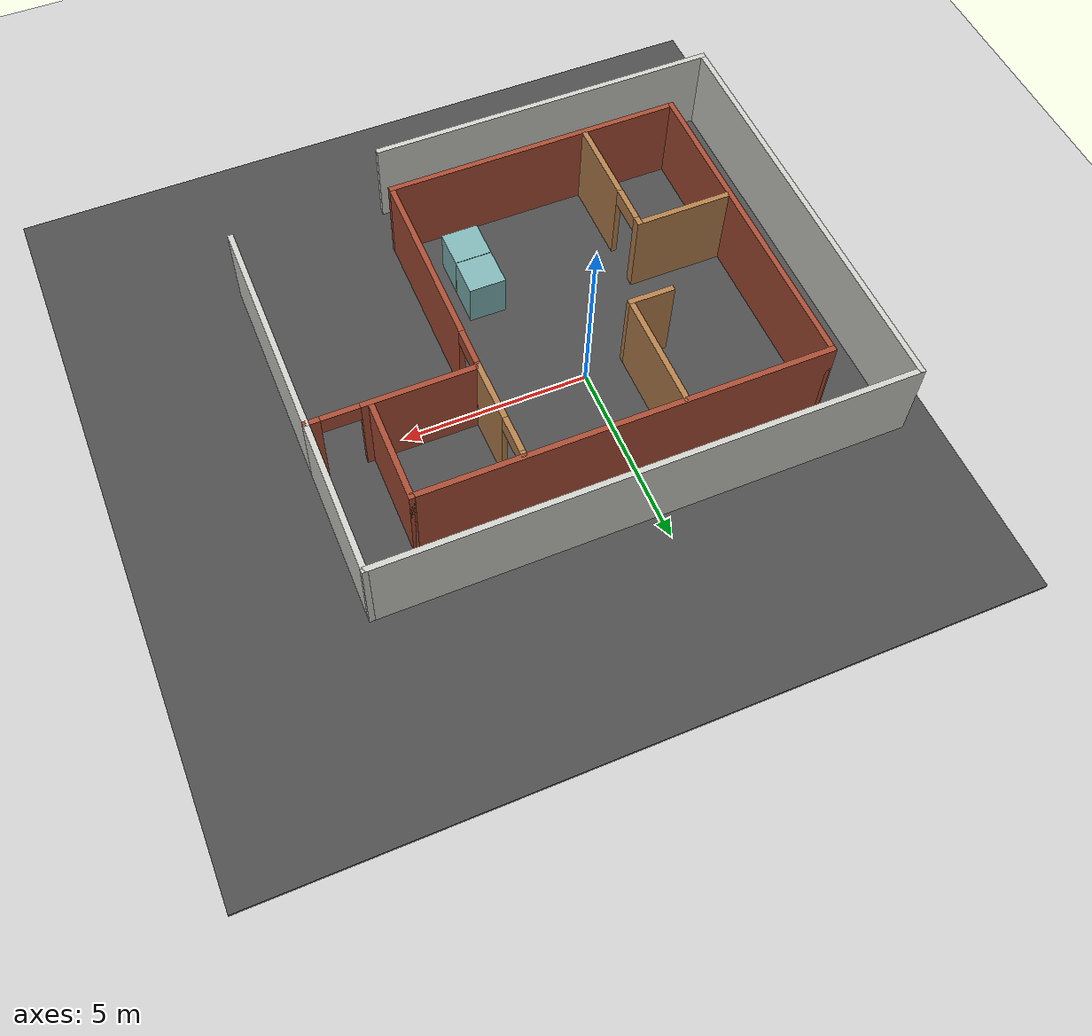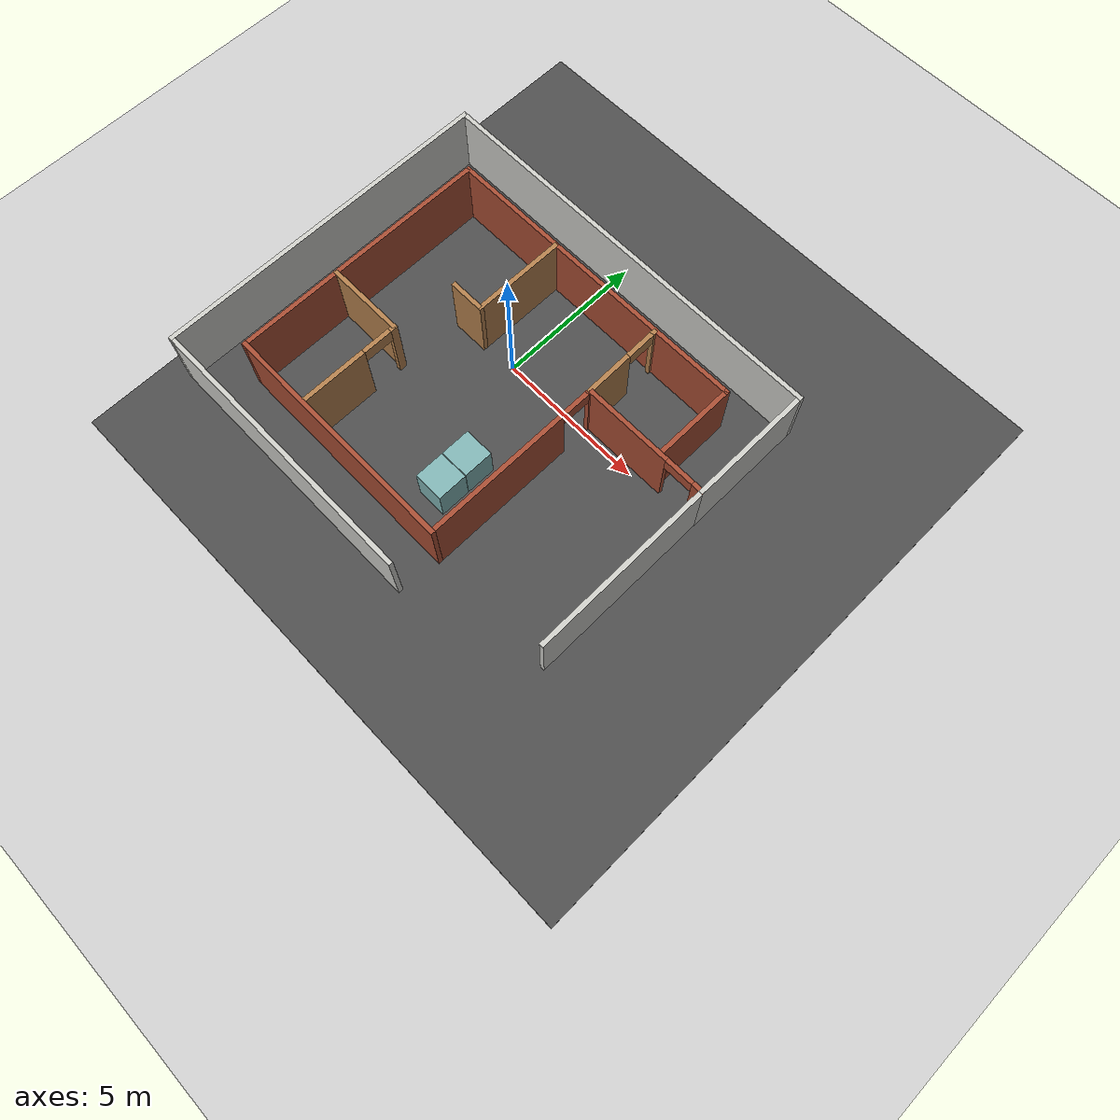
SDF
<sdf version="1.6">
 <world name="default">
  <model name="ground_plane">
   <static>1</static>
   <link name="link">
    <collision name="collision">
     <geometry><plane><normal>0 0 1</normal><size>100 100</size></plane></geometry>
     <surface><friction><ode><mu>100</mu><mu2>50</mu2></ode></friction></surface>
    </collision>
    <visual name="visual">
     <cast_shadows>0</cast_shadows>
     <geometry><plane><normal>0 0 1</normal><size>100 100</size></plane></geometry>
     <material>
      <script><uri>file://media/materials/scripts/gazebo.material</uri><name>Gazebo/Grey</name></script>
     </material>
    </visual>
   </link>
  </model>
  <model name="adaptada">
   <pose>0.353593 -1.4494 0 0 -0 0</pose>
   <link name="Wall_0">
    <collision name="Wall_0_Collision">
     <geometry><box><size>6.25 0.15 2.5</size></box></geometry>
     <pose>0 0 1.25 0 -0 0</pose>
    </collision>
    <visual name="Wall_0_Visual">
     <pose>0 0 1.25 0 -0 0</pose>
     <geometry><box><size>6.25 0.15 2.5</size></box></geometry>
     <material>
      <script><uri>file://media/materials/scripts/gazebo.material</uri><name>Gazebo/CeilingTiled</name></script>
      <ambient>1 1 1 1</ambient>
     </material>
     <meta><layer>0</layer></meta>
    </visual>
    <pose>7.05 -1.35 0 0 -0 1.5708</pose>
   </link>
   <link name="Wall_1">
    <pose>4.875 1.7 0 0 -0 3.14159</pose>
    <visual name="Wall_1_Visual_0">
     <pose>-2.04113 0 1.25 0 -0 0</pose>
     <geometry><box><size>0.417739 0.15 2.5</size></box></geometry>
     <material>
      <script><uri>file://media/materials/scripts/gazebo.material</uri><name>Gazebo/Bricks</name></script>
      <ambient>1 1 1 1</ambient>
     </material>
     <meta><layer>0</layer></meta>
    </visual>
    <collision name="Wall_1_Collision_0">
     <geometry><box><size>0.417739 0.15 2.5</size></box></geometry>
     <pose>-2.04113 0 1.25 0 -0 0</pose>
    </collision>
    <visual name="Wall_1_Visual_1">
     <pose>0.70887 0 1.25 0 -0 0</pose>
     <geometry><box><size>3.08226 0.15 2.5</size></box></geometry>
     <material>
      <script><uri>file://media/materials/scripts/gazebo.material</uri><name>Gazebo/Bricks</name></script>
      <ambient>1 1 1 1</ambient>
     </material>
     <meta><layer>0</layer></meta>
    </visual>
    <collision name="Wall_1_Collision_1">
     <geometry><box><size>3.08226 0.15 2.5</size></box></geometry>
     <pose>0.70887 0 1.25 0 -0 0</pose>
    </collision>
    <visual name="Wall_1_Visual_2">
     <pose>-1.33226 0 2.25 0 -0 0</pose>
     <geometry><box><size>1 0.15 0.5</size></box></geometry>
     <material>
      <script><uri>file://media/materials/scripts/gazebo.material</uri><name>Gazebo/Bricks</name></script>
      <ambient>1 1 1 1</ambient>
     </material>
     <meta><layer>0</layer></meta>
    </visual>
    <collision name="Wall_1_Collision_2">
     <geometry><box><size>1 0.15 0.5</size></box></geometry>
     <pose>-1.33226 0 2.25 0 -0 0</pose>
    </collision>
   </link>
   <link name="Wall_11">
    <collision name="Wall_11_Collision">
     <geometry><box><size>2.75 0.15 2.5</size></box></geometry>
     <pose>0 0 1.25 0 -0 0</pose>
    </collision>
    <visual name="Wall_11_Visual">
     <pose>0 0 1.25 0 -0 0</pose>
     <geometry><box><size>2.75 0.15 2.5</size></box></geometry>
     <material>
      <script><uri>file://media/materials/scripts/gazebo.material</uri><name>Gazebo/Wood</name></script>
      <ambient>1 1 1 1</ambient>
     </material>
     <meta><layer>0</layer></meta>
    </visual>
    <pose>-4.09133 -0.927238 0 0 -0 0</pose>
   </link>
   <link name="Wall_12">
    <pose>-2.79133 -2.60224 0 0 0 -1.5708</pose>
    <visual name="Wall_12_Visual_0">
     <pose>-1.62181 0 1.25 0 -0 0</pose>
     <geometry><box><size>0.256373 0.15 2.5</size></box></geometry>
     <material>
      <script><uri>file://media/materials/scripts/gazebo.material</uri><name>Gazebo/Wood</name></script>
      <ambient>1 1 1 1</ambient>
     </material>
     <meta><layer>0</layer></meta>
    </visual>
    <collision name="Wall_12_Collision_0">
     <geometry><box><size>0.256373 0.15 2.5</size></box></geometry>
     <pose>-1.62181 0 1.25 0 -0 0</pose>
    </collision>
    <visual name="Wall_12_Visual_1">
     <pose>0.628187 0 1.25 0 -0 0</pose>
     <geometry><box><size>2.24363 0.15 2.5</size></box></geometry>
     <material>
      <script><uri>file://media/materials/scripts/gazebo.material</uri><name>Gazebo/Wood</name></script>
      <ambient>1 1 1 1</ambient>
     </material>
     <meta><layer>0</layer></meta>
    </visual>
    <collision name="Wall_12_Collision_1">
     <geometry><box><size>2.24363 0.15 2.5</size></box></geometry>
     <pose>0.628187 0 1.25 0 -0 0</pose>
    </collision>
    <visual name="Wall_12_Visual_2">
     <pose>-0.993627 0 2.25 0 -0 0</pose>
     <geometry><box><size>1 0.15 0.5</size></box></geometry>
     <material>
      <script><uri>file://media/materials/scripts/gazebo.material</uri><name>Gazebo/Wood</name></script>
      <ambient>1 1 1 1</ambient>
     </material>
     <meta><layer>0</layer></meta>
    </visual>
    <collision name="Wall_12_Collision_2">
     <geometry><box><size>1 0.15 0.5</size></box></geometry>
     <pose>-0.993627 0 2.25 0 -0 0</pose>
    </collision>
   </link>
   <link name="Wall_14">
    <pose>2.67834 3.04275 0 0 0 -1.55466</pose>
    <visual name="Wall_14_Visual_0">
     <pose>-1.33225 0 1.25 0 -0 0</pose>
     <geometry><box><size>0.171349 0.15 2.5</size></box></geometry>
     <material>
      <script><uri>file://media/materials/scripts/gazebo.material</uri><name>Gazebo/Wood</name></script>
      <ambient>1 1 1 1</ambient>
     </material>
     <meta><layer>0</layer></meta>
    </visual>
    <collision name="Wall_14_Collision_0">
     <geometry><box><size>0.171349 0.15 2.5</size></box></geometry>
     <pose>-1.33225 0 1.25 0 -0 0</pose>
    </collision>
    <visual name="Wall_14_Visual_1">
     <pose>0.585675 0 1.25 0 -0 0</pose>
     <geometry><box><size>1.66449 0.15 2.5</size></box></geometry>
     <material>
      <script><uri>file://media/materials/scripts/gazebo.material</uri><name>Gazebo/Wood</name></script>
      <ambient>1 1 1 1</ambient>
     </material>
     <meta><layer>0</layer></meta>
    </visual>
    <collision name="Wall_14_Collision_1">
     <geometry><box><size>1.66449 0.15 2.5</size></box></geometry>
     <pose>0.585675 0 1.25 0 -0 0</pose>
    </collision>
    <visual name="Wall_14_Visual_2">
     <pose>-0.746572 0 2.25 0 -0 0</pose>
     <geometry><box><size>1 0.15 0.5</size></box></geometry>
     <material>
      <script><uri>file://media/materials/scripts/gazebo.material</uri><name>Gazebo/Wood</name></script>
      <ambient>1 1 1 1</ambient>
     </material>
     <meta><layer>0</layer></meta>
    </visual>
    <collision name="Wall_14_Collision_2">
     <geometry><box><size>1 0.15 0.5</size></box></geometry>
     <pose>-0.746572 0 2.25 0 -0 0</pose>
    </collision>
   </link>
   <link name="Wall_16">
    <collision name="Wall_16_Collision">
     <geometry><box><size>4.25 0.15 2.5</size></box></geometry>
     <pose>0 0 1.25 0 -0 0</pose>
    </collision>
    <visual name="Wall_16_Visual">
     <pose>0 0 1.25 0 -0 0</pose>
     <geometry><box><size>4.25 0.15 2.5</size></box></geometry>
     <material>
      <script><uri>file://media/materials/scripts/gazebo.material</uri><name>Gazebo/CeilingTiled</name></script>
      <ambient>1 1 1 1</ambient>
     </material>
     <meta><layer>0</layer></meta>
    </visual>
    <pose>7.05 3.75 0 0 -0 1.5708</pose>
   </link>
   <link name="Wall_17">
    <collision name="Wall_17_Collision">
     <geometry><box><size>14.25 0.15 2.5</size></box></geometry>
     <pose>0 0 1.25 0 -0 0</pose>
    </collision>
    <visual name="Wall_17_Visual">
     <pose>0 0 1.25 0 -0 0</pose>
     <geometry><box><size>14.25 0.15 2.5</size></box></geometry>
     <material>
      <script><uri>file://media/materials/scripts/gazebo.material</uri><name>Gazebo/CeilingTiled</name></script>
      <ambient>1 1 1 1</ambient>
     </material>
     <meta><layer>0</layer></meta>
    </visual>
    <pose>0 5.8 0 0 -0 3.14159</pose>
   </link>
   <link name="Wall_18">
    <collision name="Wall_18_Collision">
     <geometry><box><size>11.75 0.15 2.5</size></box></geometry>
     <pose>0 0 1.25 0 -0 0</pose>
    </collision>
    <visual name="Wall_18_Visual">
     <pose>0 0 1.25 0 -0 0</pose>
     <geometry><box><size>11.75 0.15 2.5</size></box></geometry>
     <material>
      <script><uri>file://media/materials/scripts/gazebo.material</uri><name>Gazebo/CeilingTiled</name></script>
      <ambient>1 1 1 1</ambient>
     </material>
     <meta><layer>0</layer></meta>
    </visual>
    <pose>-7.05 0 0 0 0 -1.5708</pose>
   </link>
   <link name="Wall_19">
    <collision name="Wall_19_Collision">
     <geometry><box><size>9.75 0.15 2.5</size></box></geometry>
     <pose>0 0 1.25 0 -0 0</pose>
    </collision>
    <visual name="Wall_19_Visual">
     <pose>0 0 1.25 0 -0 0</pose>
     <geometry><box><size>9.75 0.15 2.5</size></box></geometry>
     <material>
      <script><uri>file://media/materials/scripts/gazebo.material</uri><name>Gazebo/CeilingTiled</name></script>
      <ambient>1 1 1 1</ambient>
     </material>
     <meta><layer>0</layer></meta>
    </visual>
    <pose>-2.25 -5.8 0 0 -0 0</pose>
   </link>
   <link name="Wall_2">
    <pose>2.7 -1.35 0 0 0 -1.5708</pose>
    <visual name="Wall_2_Visual_0">
     <pose>-3.02331 0 1.25 0 -0 0</pose>
     <geometry><box><size>0.203389 0.15 2.5</size></box></geometry>
     <material>
      <script><uri>file://media/materials/scripts/gazebo.material</uri><name>Gazebo/Bricks</name></script>
      <ambient>1 1 1 1</ambient>
     </material>
     <meta><layer>0</layer></meta>
    </visual>
    <collision name="Wall_2_Collision_0">
     <geometry><box><size>0.203389 0.15 2.5</size></box></geometry>
     <pose>-3.02331 0 1.25 0 -0 0</pose>
    </collision>
    <visual name="Wall_2_Visual_1">
     <pose>0.601694 0 1.25 0 -0 0</pose>
     <geometry><box><size>5.04661 0.15 2.5</size></box></geometry>
     <material>
      <script><uri>file://media/materials/scripts/gazebo.material</uri><name>Gazebo/Bricks</name></script>
      <ambient>1 1 1 1</ambient>
     </material>
     <meta><layer>0</layer></meta>
    </visual>
    <collision name="Wall_2_Collision_1">
     <geometry><box><size>5.04661 0.15 2.5</size></box></geometry>
     <pose>0.601694 0 1.25 0 -0 0</pose>
    </collision>
    <visual name="Wall_2_Visual_2">
     <pose>-2.42161 0 2.25 0 -0 0</pose>
     <geometry><box><size>1 0.15 0.5</size></box></geometry>
     <material>
      <script><uri>file://media/materials/scripts/gazebo.material</uri><name>Gazebo/Bricks</name></script>
      <ambient>1 1 1 1</ambient>
     </material>
     <meta><layer>0</layer></meta>
    </visual>
    <collision name="Wall_2_Collision_2">
     <geometry><box><size>1 0.15 0.5</size></box></geometry>
     <pose>-2.42161 0 2.25 0 -0 0</pose>
    </collision>
   </link>
   <link name="Wall_3">
    <collision name="Wall_3_Collision">
     <geometry><box><size>8.25 0.15 2.5</size></box></geometry>
     <pose>0 0 1.25 0 -0 0</pose>
    </collision>
    <visual name="Wall_3_Visual">
     <pose>0 0 1.25 0 -0 0</pose>
     <geometry><box><size>8.25 0.15 2.5</size></box></geometry>
     <material>
      <script><uri>file://media/materials/scripts/gazebo.material</uri><name>Gazebo/Bricks</name></script>
      <ambient>1 1 1 1</ambient>
     </material>
     <meta><layer>0</layer></meta>
    </visual>
    <pose>-1.35 -4.4 0 0 -0 3.14159</pose>
   </link>
   <link name="Wall_4">
    <collision name="Wall_4_Collision">
     <geometry><box><size>9 0.15 2.5</size></box></geometry>
     <pose>0 0 1.25 0 -0 0</pose>
    </collision>
    <visual name="Wall_4_Visual">
     <pose>0 0 1.25 0 -0 0</pose>
     <geometry><box><size>9 0.15 2.5</size></box></geometry>
     <material>
      <script><uri>file://media/materials/scripts/gazebo.material</uri><name>Gazebo/Bricks</name></script>
      <ambient>1 1 1 1</ambient>
     </material>
     <meta><layer>0</layer></meta>
    </visual>
    <pose>-5.4 0.025 0 0 -0 1.5708</pose>
   </link>
   <link name="Wall_5">
    <collision name="Wall_5_Collision">
     <geometry><box><size>11 0.15 2.5</size></box></geometry>
     <pose>0 0 1.25 0 -0 0</pose>
    </collision>
    <visual name="Wall_5_Visual">
     <pose>0 0 1.25 0 -0 0</pose>
     <geometry><box><size>11 0.15 2.5</size></box></geometry>
     <material>
      <script><uri>file://media/materials/scripts/gazebo.material</uri><name>Gazebo/Bricks</name></script>
      <ambient>1 1 1 1</ambient>
     </material>
     <meta><layer>0</layer></meta>
    </visual>
    <pose>0.025 4.45 0 0 -0 0</pose>
   </link>
   <link name="Wall_6">
    <collision name="Wall_6_Collision">
     <geometry><box><size>2.75 0.15 2.5</size></box></geometry>
     <pose>0 0 1.25 0 -0 0</pose>
    </collision>
    <visual name="Wall_6_Visual">
     <pose>0 0 1.25 0 -0 0</pose>
     <geometry><box><size>2.75 0.15 2.5</size></box></geometry>
     <material>
      <script><uri>file://media/materials/scripts/gazebo.material</uri><name>Gazebo/Bricks</name></script>
      <ambient>1 1 1 1</ambient>
     </material>
     <meta><layer>0</layer></meta>
    </visual>
    <pose>5.45 3.15 0 0 0 -1.5708</pose>
   </link>
   <link name="Wall_8">
    <collision name="Wall_8_Collision">
     <geometry><box><size>3.25 0.15 2.5</size></box></geometry>
     <pose>0 0 1.25 0 -0 0</pose>
    </collision>
    <visual name="Wall_8_Visual">
     <pose>0 0 1.25 0 -0 0</pose>
     <geometry><box><size>3.25 0.15 2.5</size></box></geometry>
     <material>
      <script><uri>file://media/materials/scripts/gazebo.material</uri><name>Gazebo/Wood</name></script>
      <ambient>1 1 1 1</ambient>
     </material>
     <meta><layer>0</layer></meta>
    </visual>
    <pose>-1.49883 2.86179 0 0 0 -1.5708</pose>
   </link>
   <link name="Wall_9">
    <collision name="Wall_9_Collision">
     <geometry><box><size>1.25 0.15 2.5</size></box></geometry>
     <pose>0 0 1.25 0 -0 0</pose>
    </collision>
    <visual name="Wall_9_Visual">
     <pose>0 0 1.25 0 -0 0</pose>
     <geometry><box><size>1.25 0.15 2.5</size></box></geometry>
     <material>
      <script><uri>file://media/materials/scripts/gazebo.material</uri><name>Gazebo/Wood</name></script>
      <ambient>1 1 1 1</ambient>
     </material>
     <meta><layer>0</layer></meta>
    </visual>
    <pose>-2.04883 1.31179 0 0 -0 3.14159</pose>
   </link>
   <static>1</static>
  </model>
  <model name="asphalt_plane">
   <static>1</static>
   <link name="link">
    <collision name="collision"><geometry><box><size>20 20 0.1</size></box></geometry></collision>
    <visual name="visual">
     <cast_shadows>0</cast_shadows>
     <geometry><box><size>20 20 0.1</size></box></geometry>
     <material>
      <script>
       <uri>model://asphalt_plane/materials/scripts</uri>
       <uri>model://asphalt_plane/materials/textures</uri>
       <name>vrc/asphalt</name>
      </script>
     </material>
    </visual>
   </link>
   <pose>2.38925 -0.438232 0 0 -0 0</pose>
  </model>
  <model name="unit_box1">
   <link name="link">
    <inertial>
     <mass>1</mass>
     <inertia>
      <ixx>0.166667</ixx>
      <ixy>0</ixy>
      <ixz>0</ixz>
      <iyy>0.166667</iyy>
      <iyz>0</iyz>
      <izz>0.166667</izz>
     </inertia>
    </inertial>
    <visual name="visual">
     <geometry><box><size>1 1 1.5</size></box></geometry>
     <material>
      <script><name>Gazebo/Grey</name><uri>file://media/materials/scripts/gazebo.material</uri></script>
      <ambient>0.5 0.3 0.3 1</ambient>
      <diffuse>0.5 0.7 0.7 1</diffuse>
      <specular>0.01 0.01 0.01 1</specular>
      <emissive>0 0 0 1</emissive>
      <shader type="vertex"><normal_map>__default__</normal_map></shader>
     </material>
    </visual>
    <collision name="collision">
     <geometry><box><size>1 1 1.5</size></box></geometry>
     <surface>
      <friction>
       <ode><mu>1</mu><mu2>1</mu2><fdir1>0 0 0</fdir1><slip1>0</slip1><slip2>0</slip2></ode>
       <torsional>
        <coefficient>1</coefficient>
        <patch_radius>0</patch_radius>
        <surface_radius>0</surface_radius>
        <use_patch_radius>1</use_patch_radius>
        <ode><slip>0</slip></ode>
       </torsional>
      </friction>
      <bounce><restitution_coefficient>0</restitution_coefficient><threshold>1e+06</threshold></bounce>
      <contact>
       <collide_without_contact>0</collide_without_contact>
       <collide_without_contact_bitmask>1</collide_without_contact_bitmask>
       <collide_bitmask>1</collide_bitmask>
       <ode>
        <soft_cfm>0</soft_cfm>
        <soft_erp>0.2</soft_erp>
        <kp>1e+13</kp>
        <kd>1</kd>
        <max_vel>0.01</max_vel>
        <min_depth>0</min_depth>
       </ode>
       <bullet>
        <split_impulse>1</split_impulse>
        <split_impulse_penetration_threshold>-0.01</split_impulse_penetration_threshold>
        <soft_cfm>0</soft_cfm>
        <soft_erp>0.2</soft_erp>
        <kp>1e+13</kp>
        <kd>1</kd>
       </bullet>
      </contact>
     </surface>
    </collision>
   </link>
   <static>0</static>
   <pose>1.58589 -3.30227 0.55 0 -0 0</pose>
  </model>
  <model name="unit_box1_clone">
   <link name="link">
    <inertial>
     <mass>1</mass>
     <inertia>
      <ixx>0.166667</ixx>
      <ixy>0</ixy>
      <ixz>0</ixz>
      <iyy>0.166667</iyy>
      <iyz>0</iyz>
      <izz>0.166667</izz>
     </inertia>
    </inertial>
    <visual name="visual">
     <geometry><box><size>1 1 1.5</size></box></geometry>
     <material>
      <script><name>Gazebo/Grey</name><uri>file://media/materials/scripts/gazebo.material</uri></script>
      <ambient>0.5 0.3 0.3 1</ambient>
      <diffuse>0.5 0.7 0.7 1</diffuse>
      <specular>0.01 0.01 0.01 1</specular>
      <emissive>0 0 0 1</emissive>
      <shader type="vertex"><normal_map>__default__</normal_map></shader>
     </material>
    </visual>
    <collision name="collision">
     <geometry><box><size>1 1 1.5</size></box></geometry>
     <surface>
      <friction>
       <ode><mu>1</mu><mu2>1</mu2><fdir1>0 0 0</fdir1><slip1>0</slip1><slip2>0</slip2></ode>
       <torsional>
        <coefficient>1</coefficient>
        <patch_radius>0</patch_radius>
        <surface_radius>0</surface_radius>
        <use_patch_radius>1</use_patch_radius>
        <ode><slip>0</slip></ode>
       </torsional>
      </friction>
      <bounce><restitution_coefficient>0</restitution_coefficient><threshold>1e+06</threshold></bounce>
      <contact>
       <collide_without_contact>0</collide_without_contact>
       <collide_without_contact_bitmask>1</collide_without_contact_bitmask>
       <collide_bitmask>1</collide_bitmask>
       <ode>
        <soft_cfm>0</soft_cfm>
        <soft_erp>0.2</soft_erp>
        <kp>1e+13</kp>
        <kd>1</kd>
        <max_vel>0.01</max_vel>
        <min_depth>0</min_depth>
       </ode>
       <bullet>
        <split_impulse>1</split_impulse>
        <split_impulse_penetration_threshold>-0.01</split_impulse_penetration_threshold>
        <soft_cfm>0</soft_cfm>
        <soft_erp>0.2</soft_erp>
        <kp>1e+13</kp>
        <kd>1</kd>
       </bullet>
      </contact>
     </surface>
    </collision>
   </link>
   <static>0</static>
   <pose>1.58816 -4.3187 0.55 0 -0 0</pose>
  </model>
 </world>
</sdf>
